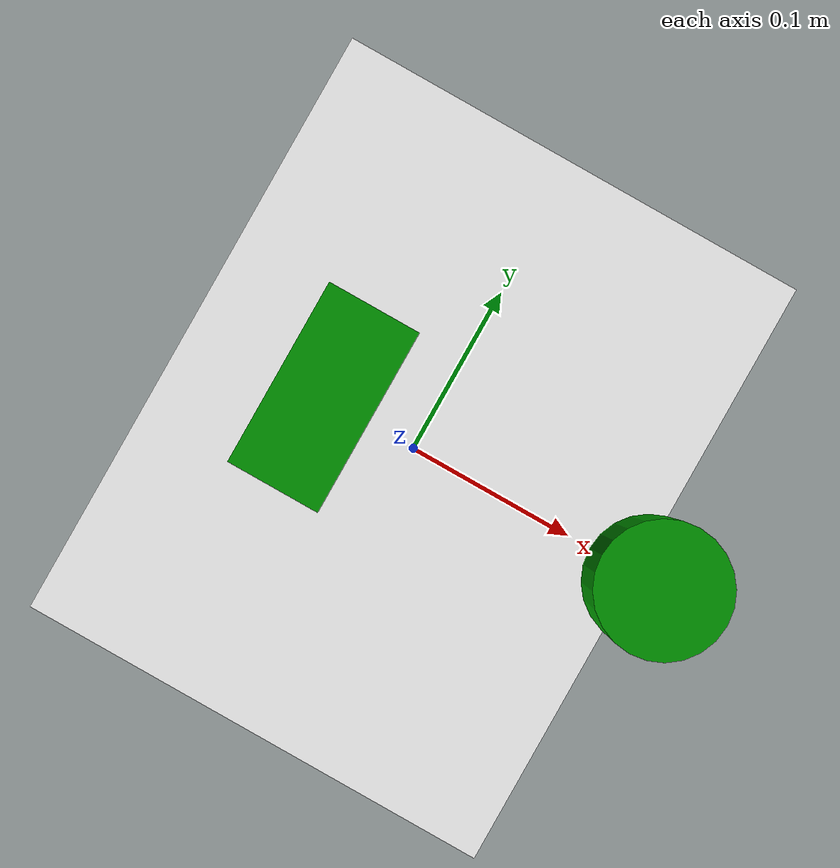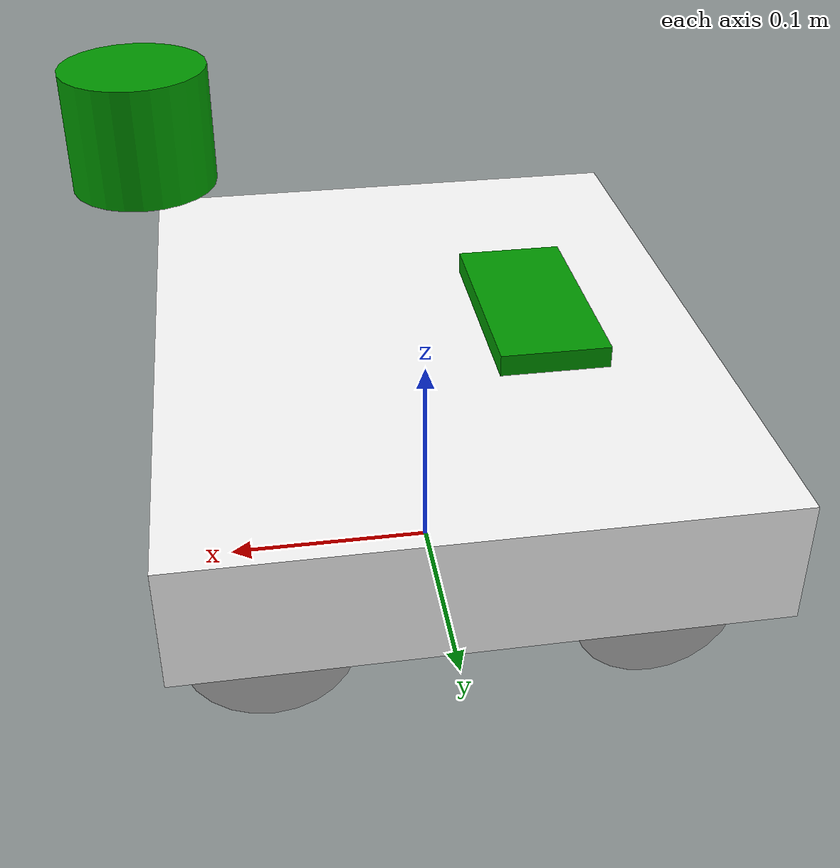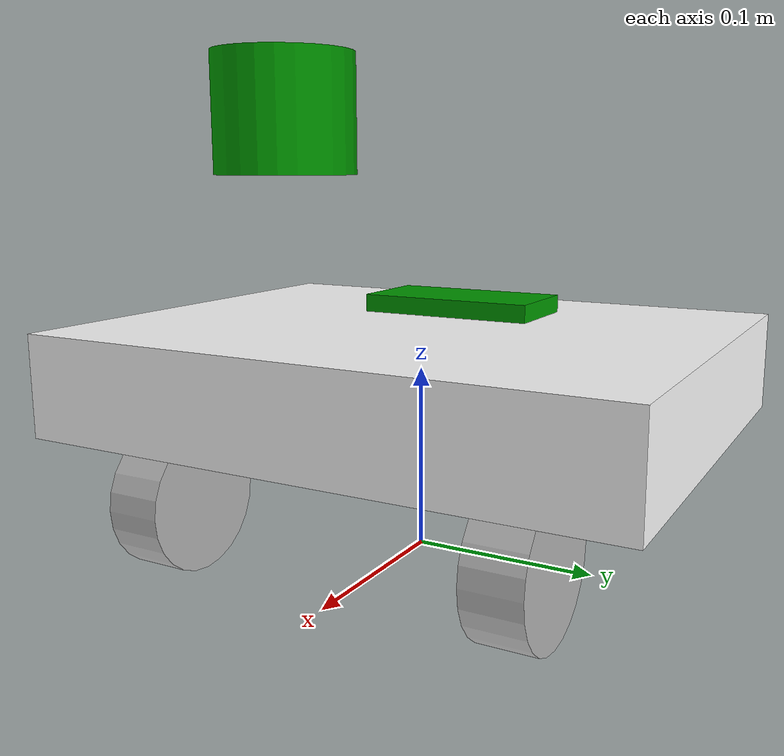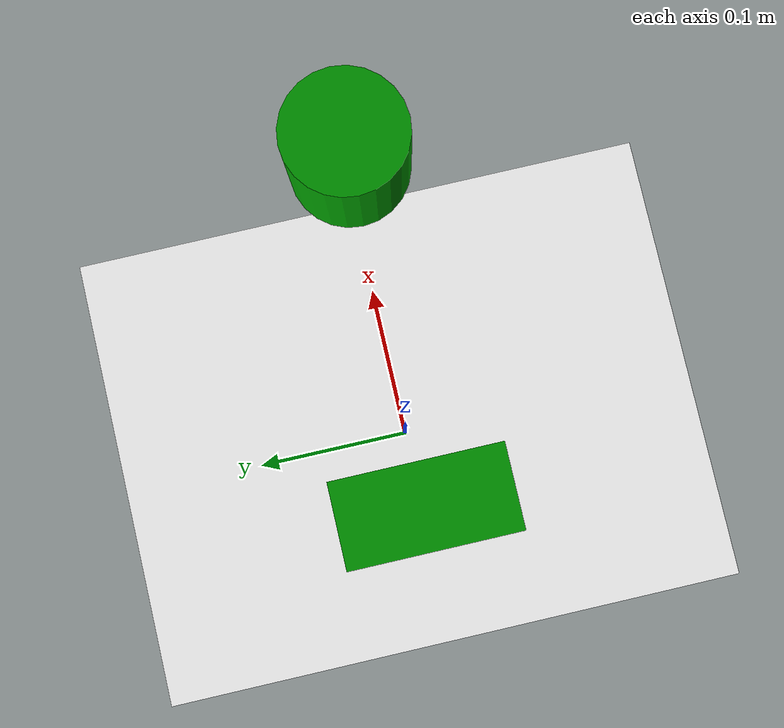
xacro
<?xml version="1.0"?>
<robot name="roscar" xmlns:xacro="http://www.ros.org/wiki/xacro">

    <material name="grey">
        <color rgba="0.7 0.7 0.7 1"/>
    </material>
    <material name="green">
        <color rgba="0 0.6 0 1"/>
    </material>
    <material name="white">
        <color rgba="1 1 1 1"/>
    </material>

    <link name="base_link">
        <visual>
            <geometry>
                <box size="0.25 0.32 0.055"/>
            </geometry>
            <origin xyz="0 0 0.0975" rpy="0 0 0"/>
            <material name="white"/>
        </visual>
        <collision>
            <geometry>
                <box size="0.25 0.32 0.055"/>
            </geometry>
            <origin xyz="0 0 0.0975"/>
        </collision>
        <inertial>
            <origin xyz="0 0 0.0975"/>
            <mass value="1.0"/>
            <inertia ixx="0.03" ixy="0.0" ixz="0.0"
                     iyy="0.05" iyz="0.0"
                     izz="0.07"/>
        </inertial>
    </link>

    <link name="laser_link">
        <visual>
            <geometry>
                <cylinder radius="0.03" length="0.05"/>
            </geometry>
            <origin xyz="0 0 0" rpy="0 0 0"/>
            <material name="green"/>
        </visual>
        <collision>
            <geometry>
                <cylinder radius="0.03" length="0.05"/>
            </geometry>
            <origin xyz="0 0 0"/>
        </collision>
        <inertial>
            <origin xyz="0 0 0"/>
            <mass value="0.2"/>
            <inertia ixx="0.0001" ixy="0" ixz="0"
                     iyy="0.0001" iyz="0"
                     izz="0.0001"/>
        </inertial>
    </link>

    <link name="imu_link">
        <visual>
            <geometry>
                <box size="0.05 0.1 0.01"/>
            </geometry>
            <origin xyz="0 0 0" rpy="0 0 0"/>
            <material name="green"/>
        </visual>
        <collision>
            <geometry>
                <box size="0.05 0.1 0.01"/>
            </geometry>
            <origin xyz="0 0 0"/>
        </collision>
        <inertial>
            <origin xyz="0 0 0"/>
            <mass value="0.05"/>
            <inertia ixx="0.00001" ixy="0" ixz="0"
                     iyy="0.00001" iyz="0"
                     izz="0.00001"/>
        </inertial>
    </link>

    <xacro:macro name="wheel_link" params="prefix">
        <link name="${prefix}_wheel">
            <visual>
                <geometry>
                    <cylinder radius="0.0375" length="0.03"/>
                </geometry>
                <origin xyz="0 0 0" rpy="1.57 0 0"/>
                <material name="grey"/>
            </visual>
            <collision>
                <geometry>
                    <cylinder radius="0.0375" length="0.03"/>
                </geometry>
                <origin xyz="0 0 0"/>
            </collision>
            <inertial>
                <origin xyz="0 0 0"/>
                <mass value="0.2"/>
                <inertia ixx="0.0001" ixy="0" ixz="0"
                         iyy="0.0001" iyz="0"
                         izz="0.0001"/>
            </inertial>
        </link>
    </xacro:macro>

    <xacro:wheel_link prefix="LR"/>
    <xacro:wheel_link prefix="RR"/>
    <xacro:wheel_link prefix="LF"/>
    <xacro:wheel_link prefix="RF"/>

    <joint name="base_laser_joint" type="fixed">
        <parent link="base_link"/>
        <child link="laser_link"/>
        <origin xyz="0.12 0 0.23" rpy="0 0 0"/>
    </joint>
    <joint name="base_imu_joint" type="fixed">
        <parent link="base_link"/>
        <child link="imu_link"/>
        <origin xyz="-0.05 0 0.13" rpy="0 0 0"/>
    </joint>

    <joint name="base_LR_wheel_joint" type="continuous">
        <parent link="base_link"/>
        <child link="LR_wheel"/>
        <origin xyz="-0.085 0.0975 0.0375" rpy="0 0 0"/>
        <axis xyz="0 1 0"/>
    </joint>
    <joint name="base_RR_wheel_joint" type="continuous">
        <parent link="base_link"/>
        <child link="RR_wheel"/>
        <origin xyz="-0.085 -0.0975 0.0375" rpy="0 0 0"/>
        <axis xyz="0 1 0"/>
    </joint>
    <joint name="base_LF_wheel_joint" type="continuous">
        <parent link="base_link"/>
        <child link="LF_wheel"/>
        <origin xyz="0.085 0.0975 0.0375" rpy="0 0 0"/>
        <axis xyz="0 1 0"/>
    </joint>
    <joint name="base_RF_wheel_joint" type="continuous">
        <parent link="base_link"/>
        <child link="RF_wheel"/>
        <origin xyz="0.085 -0.0975 0.0375" rpy="0 0 0"/>
        <axis xyz="0 1 0"/>
    </joint>

</robot>
